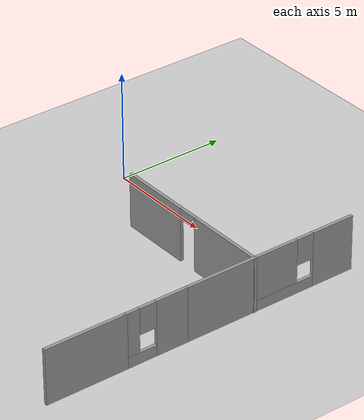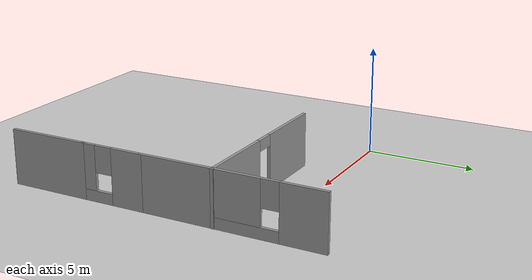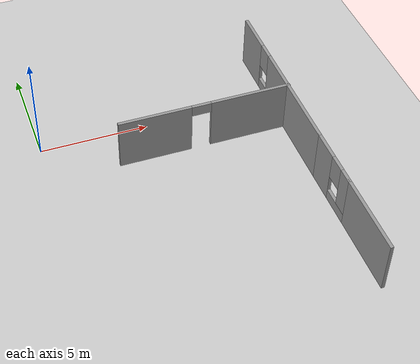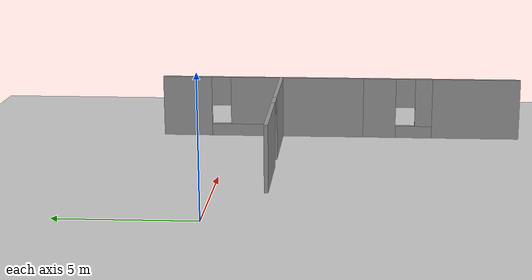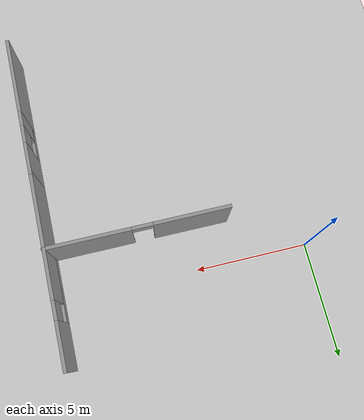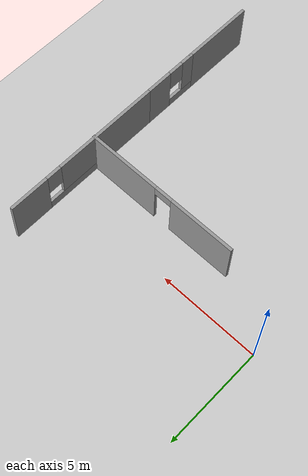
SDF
<sdf version="1.6">
 <world name="default">
  <model name="ground_plane">
   <static>1</static>
   <link name="link">
    <collision name="collision">
     <geometry><plane><normal>0 0 1</normal><size>100 100</size></plane></geometry>
     <surface><friction><ode><mu>100</mu><mu2>50</mu2></ode></friction></surface>
    </collision>
    <visual name="visual">
     <cast_shadows>0</cast_shadows>
     <geometry><plane><normal>0 0 1</normal><size>100 100</size></plane></geometry>
     <material>
      <script><uri>file://media/materials/scripts/gazebo.material</uri><name>Gazebo/Grey</name></script>
     </material>
    </visual>
   </link>
  </model>
  <model name="factory_wall">
   <link name="Wall_11">
    <pose>8.76238 -0.332391 0 0 -0 0</pose>
    <visual name="Wall_11_Visual_0">
     <pose>-2.32414 0 1.25 0 -0 0</pose>
     <geometry><box><size>3.35171 0.15 2.5</size></box></geometry>
     <material>
      <script><uri>file://media/materials/scripts/gazebo.material</uri><name>Gazebo/Grey</name></script>
      <ambient>1 1 1 1</ambient>
      <shader type="pixel"/>
     </material>
     <meta><layer>0</layer></meta>
    </visual>
    <visual name="Wall_11_Visual_1">
     <pose>2.12586 0 1.25 0 -0 0</pose>
     <geometry><box><size>3.74829 0.15 2.5</size></box></geometry>
     <material>
      <script><uri>file://media/materials/scripts/gazebo.material</uri><name>Gazebo/Grey</name></script>
      <ambient>1 1 1 1</ambient>
      <shader type="pixel"/>
     </material>
     <meta><layer>0</layer></meta>
    </visual>
    <visual name="Wall_11_Visual_2">
     <pose>-0.198286 0 2.25 0 -0 0</pose>
     <geometry><box><size>0.9 0.15 0.5</size></box></geometry>
     <material>
      <script><uri>file://media/materials/scripts/gazebo.material</uri><name>Gazebo/Grey</name></script>
      <ambient>1 1 1 1</ambient>
      <shader type="pixel"/>
     </material>
     <meta><layer>0</layer></meta>
    </visual>
    <collision name="Wall_11_Collision_0">
     <pose>-2.32414 0 1.25 0 -0 0</pose>
     <geometry><box><size>3.35171 0.15 2.5</size></box></geometry>
     <surface>
      <friction>
       <ode><mu>1</mu><mu2>1</mu2><fdir1>0 0 0</fdir1><slip1>0</slip1><slip2>0</slip2></ode>
       <torsional>
        <coefficient>1</coefficient>
        <patch_radius>0</patch_radius>
        <surface_radius>0</surface_radius>
        <use_patch_radius>1</use_patch_radius>
        <ode><slip>0</slip></ode>
       </torsional>
      </friction>
      <bounce><restitution_coefficient>0</restitution_coefficient><threshold>1e+06</threshold></bounce>
      <contact>
       <collide_without_contact>0</collide_without_contact>
       <collide_without_contact_bitmask>1</collide_without_contact_bitmask>
       <collide_bitmask>1</collide_bitmask>
       <ode>
        <soft_cfm>0</soft_cfm>
        <soft_erp>0.2</soft_erp>
        <kp>1e+13</kp>
        <kd>1</kd>
        <max_vel>0.01</max_vel>
        <min_depth>0</min_depth>
       </ode>
       <bullet>
        <split_impulse>1</split_impulse>
        <split_impulse_penetration_threshold>-0.01</split_impulse_penetration_threshold>
        <soft_cfm>0</soft_cfm>
        <soft_erp>0.2</soft_erp>
        <kp>1e+13</kp>
        <kd>1</kd>
       </bullet>
      </contact>
     </surface>
    </collision>
    <collision name="Wall_11_Collision_1">
     <pose>2.12586 0 1.25 0 -0 0</pose>
     <geometry><box><size>3.74829 0.15 2.5</size></box></geometry>
     <surface>
      <friction>
       <ode><mu>1</mu><mu2>1</mu2><fdir1>0 0 0</fdir1><slip1>0</slip1><slip2>0</slip2></ode>
       <torsional>
        <coefficient>1</coefficient>
        <patch_radius>0</patch_radius>
        <surface_radius>0</surface_radius>
        <use_patch_radius>1</use_patch_radius>
        <ode><slip>0</slip></ode>
       </torsional>
      </friction>
      <bounce><restitution_coefficient>0</restitution_coefficient><threshold>1e+06</threshold></bounce>
      <contact>
       <collide_without_contact>0</collide_without_contact>
       <collide_without_contact_bitmask>1</collide_without_contact_bitmask>
       <collide_bitmask>1</collide_bitmask>
       <ode>
        <soft_cfm>0</soft_cfm>
        <soft_erp>0.2</soft_erp>
        <kp>1e+13</kp>
        <kd>1</kd>
        <max_vel>0.01</max_vel>
        <min_depth>0</min_depth>
       </ode>
       <bullet>
        <split_impulse>1</split_impulse>
        <split_impulse_penetration_threshold>-0.01</split_impulse_penetration_threshold>
        <soft_cfm>0</soft_cfm>
        <soft_erp>0.2</soft_erp>
        <kp>1e+13</kp>
        <kd>1</kd>
       </bullet>
      </contact>
     </surface>
    </collision>
    <collision name="Wall_11_Collision_2">
     <pose>-0.198286 0 2.25 0 -0 0</pose>
     <geometry><box><size>0.9 0.15 0.5</size></box></geometry>
     <surface>
      <friction>
       <ode><mu>1</mu><mu2>1</mu2><fdir1>0 0 0</fdir1><slip1>0</slip1><slip2>0</slip2></ode>
       <torsional>
        <coefficient>1</coefficient>
        <patch_radius>0</patch_radius>
        <surface_radius>0</surface_radius>
        <use_patch_radius>1</use_patch_radius>
        <ode><slip>0</slip></ode>
       </torsional>
      </friction>
      <bounce><restitution_coefficient>0</restitution_coefficient><threshold>1e+06</threshold></bounce>
      <contact>
       <collide_without_contact>0</collide_without_contact>
       <collide_without_contact_bitmask>1</collide_without_contact_bitmask>
       <collide_bitmask>1</collide_bitmask>
       <ode>
        <soft_cfm>0</soft_cfm>
        <soft_erp>0.2</soft_erp>
        <kp>1e+13</kp>
        <kd>1</kd>
        <max_vel>0.01</max_vel>
        <min_depth>0</min_depth>
       </ode>
       <bullet>
        <split_impulse>1</split_impulse>
        <split_impulse_penetration_threshold>-0.01</split_impulse_penetration_threshold>
        <soft_cfm>0</soft_cfm>
        <soft_erp>0.2</soft_erp>
        <kp>1e+13</kp>
        <kd>1</kd>
       </bullet>
      </contact>
     </surface>
    </collision>
   </link>
   <link name="Wall_17">
    <pose>12.6626 2.10247 0 0 0 -1.5708</pose>
    <visual name="Wall_17_Visual_0">
     <pose>-1.48655 0 1.25 0 -0 0</pose>
     <geometry><box><size>2.0269 0.15 2.5</size></box></geometry>
     <material>
      <script><uri>file://media/materials/scripts/gazebo.material</uri><name>Gazebo/Grey</name></script>
      <ambient>1 1 1 1</ambient>
      <shader type="pixel"/>
     </material>
     <meta><layer>0</layer></meta>
    </visual>
    <visual name="Wall_17_Visual_1">
     <pose>1.01345 0 0.25 0 -0 0</pose>
     <geometry><box><size>2.9731 0.15 0.5</size></box></geometry>
     <material>
      <script><uri>file://media/materials/scripts/gazebo.material</uri><name>Gazebo/Grey</name></script>
      <ambient>1 1 1 1</ambient>
      <shader type="pixel"/>
     </material>
     <meta><layer>0</layer></meta>
    </visual>
    <visual name="Wall_17_Visual_2">
     <pose>1.41345 0 1.5 0 -0 0</pose>
     <geometry><box><size>2.1731 0.15 2</size></box></geometry>
     <material>
      <script><uri>file://media/materials/scripts/gazebo.material</uri><name>Gazebo/Grey</name></script>
      <ambient>1 1 1 1</ambient>
      <shader type="pixel"/>
     </material>
     <meta><layer>0</layer></meta>
    </visual>
    <visual name="Wall_17_Visual_3">
     <pose>-0.073103 0 1.9 0 -0 0</pose>
     <geometry><box><size>0.8 0.15 1.2</size></box></geometry>
     <material>
      <script><uri>file://media/materials/scripts/gazebo.material</uri><name>Gazebo/Grey</name></script>
      <ambient>1 1 1 1</ambient>
      <shader type="pixel"/>
     </material>
     <meta><layer>0</layer></meta>
    </visual>
    <collision name="Wall_17_Collision_0">
     <pose>-1.48655 0 1.25 0 -0 0</pose>
     <geometry><box><size>2.0269 0.15 2.5</size></box></geometry>
     <surface>
      <friction>
       <ode><mu>1</mu><mu2>1</mu2><fdir1>0 0 0</fdir1><slip1>0</slip1><slip2>0</slip2></ode>
       <torsional>
        <coefficient>1</coefficient>
        <patch_radius>0</patch_radius>
        <surface_radius>0</surface_radius>
        <use_patch_radius>1</use_patch_radius>
        <ode><slip>0</slip></ode>
       </torsional>
      </friction>
      <bounce><restitution_coefficient>0</restitution_coefficient><threshold>1e+06</threshold></bounce>
      <contact>
       <collide_without_contact>0</collide_without_contact>
       <collide_without_contact_bitmask>1</collide_without_contact_bitmask>
       <collide_bitmask>1</collide_bitmask>
       <ode>
        <soft_cfm>0</soft_cfm>
        <soft_erp>0.2</soft_erp>
        <kp>1e+13</kp>
        <kd>1</kd>
        <max_vel>0.01</max_vel>
        <min_depth>0</min_depth>
       </ode>
       <bullet>
        <split_impulse>1</split_impulse>
        <split_impulse_penetration_threshold>-0.01</split_impulse_penetration_threshold>
        <soft_cfm>0</soft_cfm>
        <soft_erp>0.2</soft_erp>
        <kp>1e+13</kp>
        <kd>1</kd>
       </bullet>
      </contact>
     </surface>
    </collision>
    <collision name="Wall_17_Collision_1">
     <pose>1.01345 0 0.25 0 -0 0</pose>
     <geometry><box><size>2.9731 0.15 0.5</size></box></geometry>
     <surface>
      <friction>
       <ode><mu>1</mu><mu2>1</mu2><fdir1>0 0 0</fdir1><slip1>0</slip1><slip2>0</slip2></ode>
       <torsional>
        <coefficient>1</coefficient>
        <patch_radius>0</patch_radius>
        <surface_radius>0</surface_radius>
        <use_patch_radius>1</use_patch_radius>
        <ode><slip>0</slip></ode>
       </torsional>
      </friction>
      <bounce><restitution_coefficient>0</restitution_coefficient><threshold>1e+06</threshold></bounce>
      <contact>
       <collide_without_contact>0</collide_without_contact>
       <collide_without_contact_bitmask>1</collide_without_contact_bitmask>
       <collide_bitmask>1</collide_bitmask>
       <ode>
        <soft_cfm>0</soft_cfm>
        <soft_erp>0.2</soft_erp>
        <kp>1e+13</kp>
        <kd>1</kd>
        <max_vel>0.01</max_vel>
        <min_depth>0</min_depth>
       </ode>
       <bullet>
        <split_impulse>1</split_impulse>
        <split_impulse_penetration_threshold>-0.01</split_impulse_penetration_threshold>
        <soft_cfm>0</soft_cfm>
        <soft_erp>0.2</soft_erp>
        <kp>1e+13</kp>
        <kd>1</kd>
       </bullet>
      </contact>
     </surface>
    </collision>
    <collision name="Wall_17_Collision_2">
     <pose>1.41345 0 1.5 0 -0 0</pose>
     <geometry><box><size>2.1731 0.15 2</size></box></geometry>
     <surface>
      <friction>
       <ode><mu>1</mu><mu2>1</mu2><fdir1>0 0 0</fdir1><slip1>0</slip1><slip2>0</slip2></ode>
       <torsional>
        <coefficient>1</coefficient>
        <patch_radius>0</patch_radius>
        <surface_radius>0</surface_radius>
        <use_patch_radius>1</use_patch_radius>
        <ode><slip>0</slip></ode>
       </torsional>
      </friction>
      <bounce><restitution_coefficient>0</restitution_coefficient><threshold>1e+06</threshold></bounce>
      <contact>
       <collide_without_contact>0</collide_without_contact>
       <collide_without_contact_bitmask>1</collide_without_contact_bitmask>
       <collide_bitmask>1</collide_bitmask>
       <ode>
        <soft_cfm>0</soft_cfm>
        <soft_erp>0.2</soft_erp>
        <kp>1e+13</kp>
        <kd>1</kd>
        <max_vel>0.01</max_vel>
        <min_depth>0</min_depth>
       </ode>
       <bullet>
        <split_impulse>1</split_impulse>
        <split_impulse_penetration_threshold>-0.01</split_impulse_penetration_threshold>
        <soft_cfm>0</soft_cfm>
        <soft_erp>0.2</soft_erp>
        <kp>1e+13</kp>
        <kd>1</kd>
       </bullet>
      </contact>
     </surface>
    </collision>
    <collision name="Wall_17_Collision_3">
     <pose>-0.073103 0 1.9 0 -0 0</pose>
     <geometry><box><size>0.8 0.15 1.2</size></box></geometry>
     <surface>
      <friction>
       <ode><mu>1</mu><mu2>1</mu2><fdir1>0 0 0</fdir1><slip1>0</slip1><slip2>0</slip2></ode>
       <torsional>
        <coefficient>1</coefficient>
        <patch_radius>0</patch_radius>
        <surface_radius>0</surface_radius>
        <use_patch_radius>1</use_patch_radius>
        <ode><slip>0</slip></ode>
       </torsional>
      </friction>
      <bounce><restitution_coefficient>0</restitution_coefficient><threshold>1e+06</threshold></bounce>
      <contact>
       <collide_without_contact>0</collide_without_contact>
       <collide_without_contact_bitmask>1</collide_without_contact_bitmask>
       <collide_bitmask>1</collide_bitmask>
       <ode>
        <soft_cfm>0</soft_cfm>
        <soft_erp>0.2</soft_erp>
        <kp>1e+13</kp>
        <kd>1</kd>
        <max_vel>0.01</max_vel>
        <min_depth>0</min_depth>
       </ode>
       <bullet>
        <split_impulse>1</split_impulse>
        <split_impulse_penetration_threshold>-0.01</split_impulse_penetration_threshold>
        <soft_cfm>0</soft_cfm>
        <soft_erp>0.2</soft_erp>
        <kp>1e+13</kp>
        <kd>1</kd>
       </bullet>
      </contact>
     </surface>
    </collision>
   </link>
   <link name="Wall_19">
    <pose>12.6626 -1.99754 0 0 0 -1.5708</pose>
    <visual name="Wall_19_Visual">
     <pose>0 0 1.25 0 -0 0</pose>
     <geometry><box><size>3.5 0.15 2.5</size></box></geometry>
     <material>
      <script><uri>file://media/materials/scripts/gazebo.material</uri><name>Gazebo/Grey</name></script>
      <ambient>1 1 1 1</ambient>
      <shader type="pixel"/>
     </material>
     <meta><layer>0</layer></meta>
    </visual>
    <collision name="Wall_19_Collision">
     <pose>0 0 1.25 0 -0 0</pose>
     <geometry><box><size>3.5 0.15 2.5</size></box></geometry>
     <surface>
      <friction>
       <ode><mu>1</mu><mu2>1</mu2><fdir1>0 0 0</fdir1><slip1>0</slip1><slip2>0</slip2></ode>
       <torsional>
        <coefficient>1</coefficient>
        <patch_radius>0</patch_radius>
        <surface_radius>0</surface_radius>
        <use_patch_radius>1</use_patch_radius>
        <ode><slip>0</slip></ode>
       </torsional>
      </friction>
      <bounce><restitution_coefficient>0</restitution_coefficient><threshold>1e+06</threshold></bounce>
      <contact>
       <collide_without_contact>0</collide_without_contact>
       <collide_without_contact_bitmask>1</collide_without_contact_bitmask>
       <collide_bitmask>1</collide_bitmask>
       <ode>
        <soft_cfm>0</soft_cfm>
        <soft_erp>0.2</soft_erp>
        <kp>1e+13</kp>
        <kd>1</kd>
        <max_vel>0.01</max_vel>
        <min_depth>0</min_depth>
       </ode>
       <bullet>
        <split_impulse>1</split_impulse>
        <split_impulse_penetration_threshold>-0.01</split_impulse_penetration_threshold>
        <soft_cfm>0</soft_cfm>
        <soft_erp>0.2</soft_erp>
        <kp>1e+13</kp>
        <kd>1</kd>
       </bullet>
      </contact>
     </surface>
    </collision>
   </link>
   <link name="Wall_21">
    <pose>12.6626 -5.09753 0 0 0 -1.5708</pose>
    <visual name="Wall_21_Visual_0">
     <pose>-0.751301 0 1.25 0 -0 0</pose>
     <geometry><box><size>1.4974 0.15 2.5</size></box></geometry>
     <material>
      <script><uri>file://media/materials/scripts/gazebo.material</uri><name>Gazebo/Grey</name></script>
      <ambient>1 1 1 1</ambient>
      <shader type="pixel"/>
     </material>
     <meta><layer>0</layer></meta>
    </visual>
    <visual name="Wall_21_Visual_1">
     <pose>0.748699 0 0.25 0 -0 0</pose>
     <geometry><box><size>1.5026 0.15 0.5</size></box></geometry>
     <material>
      <script><uri>file://media/materials/scripts/gazebo.material</uri><name>Gazebo/Grey</name></script>
      <ambient>1 1 1 1</ambient>
      <shader type="pixel"/>
     </material>
     <meta><layer>0</layer></meta>
    </visual>
    <visual name="Wall_21_Visual_2">
     <pose>1.1487 0 1.5 0 -0 0</pose>
     <geometry><box><size>0.702603 0.15 2</size></box></geometry>
     <material>
      <script><uri>file://media/materials/scripts/gazebo.material</uri><name>Gazebo/Grey</name></script>
      <ambient>1 1 1 1</ambient>
      <shader type="pixel"/>
     </material>
     <meta><layer>0</layer></meta>
    </visual>
    <visual name="Wall_21_Visual_3">
     <pose>0.397397 0 1.9 0 -0 0</pose>
     <geometry><box><size>0.8 0.15 1.2</size></box></geometry>
     <material>
      <script><uri>file://media/materials/scripts/gazebo.material</uri><name>Gazebo/Grey</name></script>
      <ambient>1 1 1 1</ambient>
      <shader type="pixel"/>
     </material>
     <meta><layer>0</layer></meta>
    </visual>
    <collision name="Wall_21_Collision_0">
     <pose>-0.751301 0 1.25 0 -0 0</pose>
     <geometry><box><size>1.4974 0.15 2.5</size></box></geometry>
     <surface>
      <friction>
       <ode><mu>1</mu><mu2>1</mu2><fdir1>0 0 0</fdir1><slip1>0</slip1><slip2>0</slip2></ode>
       <torsional>
        <coefficient>1</coefficient>
        <patch_radius>0</patch_radius>
        <surface_radius>0</surface_radius>
        <use_patch_radius>1</use_patch_radius>
        <ode><slip>0</slip></ode>
       </torsional>
      </friction>
      <bounce><restitution_coefficient>0</restitution_coefficient><threshold>1e+06</threshold></bounce>
      <contact>
       <collide_without_contact>0</collide_without_contact>
       <collide_without_contact_bitmask>1</collide_without_contact_bitmask>
       <collide_bitmask>1</collide_bitmask>
       <ode>
        <soft_cfm>0</soft_cfm>
        <soft_erp>0.2</soft_erp>
        <kp>1e+13</kp>
        <kd>1</kd>
        <max_vel>0.01</max_vel>
        <min_depth>0</min_depth>
       </ode>
       <bullet>
        <split_impulse>1</split_impulse>
        <split_impulse_penetration_threshold>-0.01</split_impulse_penetration_threshold>
        <soft_cfm>0</soft_cfm>
        <soft_erp>0.2</soft_erp>
        <kp>1e+13</kp>
        <kd>1</kd>
       </bullet>
      </contact>
     </surface>
    </collision>
    <collision name="Wall_21_Collision_1">
     <pose>0.748699 0 0.25 0 -0 0</pose>
     <geometry><box><size>1.5026 0.15 0.5</size></box></geometry>
     <surface>
      <friction>
       <ode><mu>1</mu><mu2>1</mu2><fdir1>0 0 0</fdir1><slip1>0</slip1><slip2>0</slip2></ode>
       <torsional>
        <coefficient>1</coefficient>
        <patch_radius>0</patch_radius>
        <surface_radius>0</surface_radius>
        <use_patch_radius>1</use_patch_radius>
        <ode><slip>0</slip></ode>
       </torsional>
      </friction>
      <bounce><restitution_coefficient>0</restitution_coefficient><threshold>1e+06</threshold></bounce>
      <contact>
       <collide_without_contact>0</collide_without_contact>
       <collide_without_contact_bitmask>1</collide_without_contact_bitmask>
       <collide_bitmask>1</collide_bitmask>
       <ode>
        <soft_cfm>0</soft_cfm>
        <soft_erp>0.2</soft_erp>
        <kp>1e+13</kp>
        <kd>1</kd>
        <max_vel>0.01</max_vel>
        <min_depth>0</min_depth>
       </ode>
       <bullet>
        <split_impulse>1</split_impulse>
        <split_impulse_penetration_threshold>-0.01</split_impulse_penetration_threshold>
        <soft_cfm>0</soft_cfm>
        <soft_erp>0.2</soft_erp>
        <kp>1e+13</kp>
        <kd>1</kd>
       </bullet>
      </contact>
     </surface>
    </collision>
    <collision name="Wall_21_Collision_2">
     <pose>1.1487 0 1.5 0 -0 0</pose>
     <geometry><box><size>0.702603 0.15 2</size></box></geometry>
     <surface>
      <friction>
       <ode><mu>1</mu><mu2>1</mu2><fdir1>0 0 0</fdir1><slip1>0</slip1><slip2>0</slip2></ode>
       <torsional>
        <coefficient>1</coefficient>
        <patch_radius>0</patch_radius>
        <surface_radius>0</surface_radius>
        <use_patch_radius>1</use_patch_radius>
        <ode><slip>0</slip></ode>
       </torsional>
      </friction>
      <bounce><restitution_coefficient>0</restitution_coefficient><threshold>1e+06</threshold></bounce>
      <contact>
       <collide_without_contact>0</collide_without_contact>
       <collide_without_contact_bitmask>1</collide_without_contact_bitmask>
       <collide_bitmask>1</collide_bitmask>
       <ode>
        <soft_cfm>0</soft_cfm>
        <soft_erp>0.2</soft_erp>
        <kp>1e+13</kp>
        <kd>1</kd>
        <max_vel>0.01</max_vel>
        <min_depth>0</min_depth>
       </ode>
       <bullet>
        <split_impulse>1</split_impulse>
        <split_impulse_penetration_threshold>-0.01</split_impulse_penetration_threshold>
        <soft_cfm>0</soft_cfm>
        <soft_erp>0.2</soft_erp>
        <kp>1e+13</kp>
        <kd>1</kd>
       </bullet>
      </contact>
     </surface>
    </collision>
    <collision name="Wall_21_Collision_3">
     <pose>0.397397 0 1.9 0 -0 0</pose>
     <geometry><box><size>0.8 0.15 1.2</size></box></geometry>
     <surface>
      <friction>
       <ode><mu>1</mu><mu2>1</mu2><fdir1>0 0 0</fdir1><slip1>0</slip1><slip2>0</slip2></ode>
       <torsional>
        <coefficient>1</coefficient>
        <patch_radius>0</patch_radius>
        <surface_radius>0</surface_radius>
        <use_patch_radius>1</use_patch_radius>
        <ode><slip>0</slip></ode>
       </torsional>
      </friction>
      <bounce><restitution_coefficient>0</restitution_coefficient><threshold>1e+06</threshold></bounce>
      <contact>
       <collide_without_contact>0</collide_without_contact>
       <collide_without_contact_bitmask>1</collide_without_contact_bitmask>
       <collide_bitmask>1</collide_bitmask>
       <ode>
        <soft_cfm>0</soft_cfm>
        <soft_erp>0.2</soft_erp>
        <kp>1e+13</kp>
        <kd>1</kd>
        <max_vel>0.01</max_vel>
        <min_depth>0</min_depth>
       </ode>
       <bullet>
        <split_impulse>1</split_impulse>
        <split_impulse_penetration_threshold>-0.01</split_impulse_penetration_threshold>
        <soft_cfm>0</soft_cfm>
        <soft_erp>0.2</soft_erp>
        <kp>1e+13</kp>
        <kd>1</kd>
       </bullet>
      </contact>
     </surface>
    </collision>
   </link>
   <link name="Wall_23">
    <pose>12.6626 -8.32254 0 0 0 -1.5708</pose>
    <visual name="Wall_23_Visual">
     <pose>0 0 1.25 0 -0 0</pose>
     <geometry><box><size>3.75 0.15 2.5</size></box></geometry>
     <material>
      <script><uri>file://media/materials/scripts/gazebo.material</uri><name>Gazebo/Grey</name></script>
      <ambient>1 1 1 1</ambient>
      <shader type="pixel"/>
     </material>
     <meta><layer>0</layer></meta>
    </visual>
    <collision name="Wall_23_Collision">
     <pose>0 0 1.25 0 -0 0</pose>
     <geometry><box><size>3.75 0.15 2.5</size></box></geometry>
     <surface>
      <friction>
       <ode><mu>1</mu><mu2>1</mu2><fdir1>0 0 0</fdir1><slip1>0</slip1><slip2>0</slip2></ode>
       <torsional>
        <coefficient>1</coefficient>
        <patch_radius>0</patch_radius>
        <surface_radius>0</surface_radius>
        <use_patch_radius>1</use_patch_radius>
        <ode><slip>0</slip></ode>
       </torsional>
      </friction>
      <bounce><restitution_coefficient>0</restitution_coefficient><threshold>1e+06</threshold></bounce>
      <contact>
       <collide_without_contact>0</collide_without_contact>
       <collide_without_contact_bitmask>1</collide_without_contact_bitmask>
       <collide_bitmask>1</collide_bitmask>
       <ode>
        <soft_cfm>0</soft_cfm>
        <soft_erp>0.2</soft_erp>
        <kp>1e+13</kp>
        <kd>1</kd>
        <max_vel>0.01</max_vel>
        <min_depth>0</min_depth>
       </ode>
       <bullet>
        <split_impulse>1</split_impulse>
        <split_impulse_penetration_threshold>-0.01</split_impulse_penetration_threshold>
        <soft_cfm>0</soft_cfm>
        <soft_erp>0.2</soft_erp>
        <kp>1e+13</kp>
        <kd>1</kd>
       </bullet>
      </contact>
     </surface>
    </collision>
   </link>
   <static>1</static>
   <pose>-1.6008 -1.60462 0 0 -0 0</pose>
  </model>
 </world>
</sdf>
